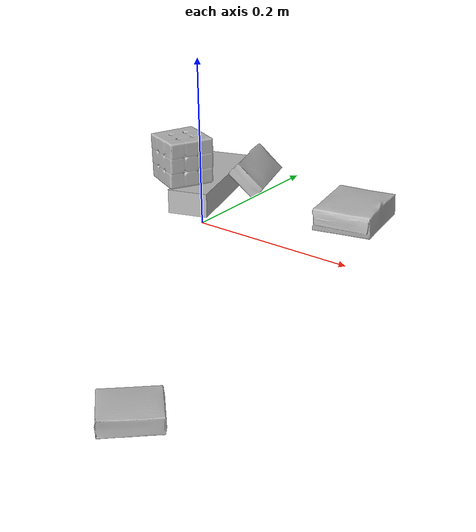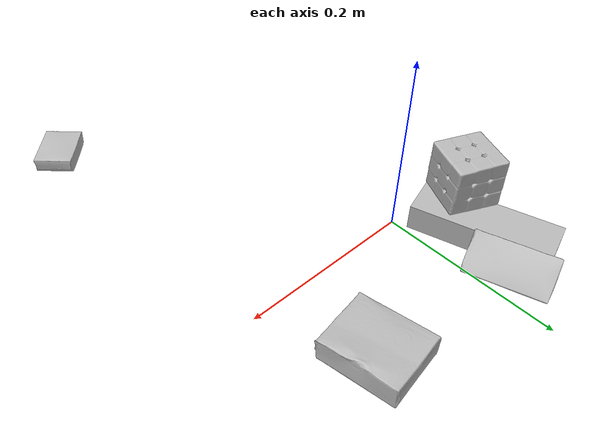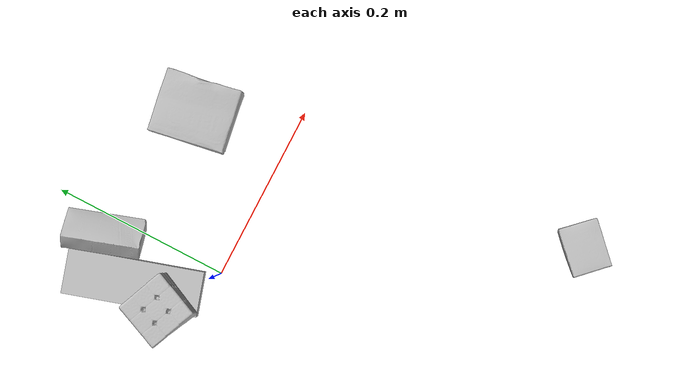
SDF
<sdf version="1.4">
  <world name="default">
    <light name="light1" type="point">
      <pose>0 0 1 0 0 0</pose>
      <diffuse>3 3 3 1</diffuse>
      <specular>3 3 3 1</specular>
    </light>
    <light name="light2" type="point">
      <pose>0 0.5 2 0 0 0</pose>
      <diffuse>1 1 1 1</diffuse>
      <specular>1 1 1 1</specular>
    </light>
    <light name="light3" type="point">
      <pose>0 0.5 2 0 0 0</pose>
      <diffuse>3 3 3 1</diffuse>
      <specular>3 3 3 1</specular>
    </light>
    <scene>
      <ambient>0.7 0.7 0.7</ambient>
    </scene>
    <model name="box1">
      <link name="link_box1">
        <collision name="default">
          <geometry>
            <mesh>
              <uri>model://jenga/collision_meshes/collision.obj</uri>
              <scale>1.0 1.0 1.0</scale>
            </mesh>
          </geometry>
          <surface>
            <friction>
              <ode>
                <mu>0.5</mu>
                <mu2>0.5</mu2>
              </ode>
            </friction>
          <contact>
        <ode>
            <max_vel>0</max_vel>
            <min_depth>0.0001</min_depth>
            <kp>1e8</kp>
        </ode>
    </contact></surface>
        </collision>
        <visual name="default">
          <geometry>
            <mesh>
              <uri>model://jenga/visual_meshes/visual.dae</uri>
              <scale>1.0 1.0 1.0</scale>
            </mesh>
          </geometry>
        </visual>
        <inertial>
          <mass>0.28879067301750183</mass>
          <pose>-2.502855807051674e-07 -0.00010250010382151231 -4.0923401684267446e-05 0.0 -7.342154049184251e-07 0.0</pose>
          <inertia>
            <ixx>7.991539e-05</ixx>
            <iyy>0.00054150453</iyy>
            <izz>0.00057810213</izz>
            <ixy>0</ixy>
            <ixz>0</ixz>
            <iyz>0</iyz>
          </inertia>
        </inertial>
      </link>
      <pose>-0.05205507203936577 0.08000481128692627 0.014999774284660816 2.8497971315690525e-06 1.9474109495757464e-07 1.873420631531833</pose>
    </model>
    <model name="box2">
      <link name="link_box2">
        <collision name="default">
          <geometry>
            <mesh>
              <uri>model://sugar_box/collision_meshes/collision.obj</uri>
              <scale>0.5 0.5 0.5</scale>
            </mesh>
          </geometry>
          <surface>
            <friction>
              <ode>
                <mu>0.5</mu>
                <mu2>0.5</mu2>
              </ode>
            </friction>
          <contact>
        <ode>
            <max_vel>0</max_vel>
            <min_depth>0.0001</min_depth>
            <kp>1e8</kp>
        </ode>
    </contact></surface>
        </collision>
        <visual name="default">
          <geometry>
            <mesh>
              <uri>model://sugar_box/visual_meshes/visual.dae</uri>
              <scale>0.5 0.5 0.5</scale>
            </mesh>
          </geometry>
        </visual>
        <inertial>
          <mass>0.10389333218336105</mass>
          <pose>0.000517186417710036 1.9245549992774613e-05 -0.00018182402709499002 -0.00040462615469338603 0.0010506637547558321 0.0026153785561208315</pose>
          <inertia>
            <ixx>2.1640906e-05</ixx>
            <iyy>6.994788e-05</iyy>
            <izz>8.373595e-05</izz>
            <ixy>0</ixy>
            <ixz>0</ixz>
            <iyz>0</iyz>
          </inertia>
        </inertial>
      </link>
      <pose>-0.019388798624277115 0.13335630297660828 0.022862188518047333 0.7699969060110063 0.003533612572482128 1.8915000016975334</pose>
    </model>
    <model name="box3">
      <link name="link_box3">
        <collision name="default">
          <geometry>
            <mesh>
              <uri>model://rubiks_cube/collision_meshes/collision.obj</uri>
              <scale>1.0 1.0 1.0</scale>
            </mesh>
          </geometry>
          <surface>
            <friction>
              <ode>
                <mu>0.5</mu>
                <mu2>0.5</mu2>
              </ode>
            </friction>
          <contact>
        <ode>
            <max_vel>0</max_vel>
            <min_depth>0.0001</min_depth>
            <kp>1e8</kp>
        </ode>
    </contact></surface>
        </collision>
        <visual name="default">
          <geometry>
            <mesh>
              <uri>model://rubiks_cube/visual_meshes/visual.dae</uri>
              <scale>1.0 1.0 1.0</scale>
            </mesh>
          </geometry>
        </visual>
        <inertial>
          <mass>0.21973572671413422</mass>
          <pose>2.6721041649580002e-05 5.256966323941015e-05 -7.264316082000732e-06 -0.054673783840129137 -0.09814154164948871 -0.03445565380518822</pose>
          <inertia>
            <ixx>0.00012141874</ixx>
            <iyy>0.000120852514</iyy>
            <izz>0.00012242487</izz>
            <ixy>0</ixy>
            <ixz>0</ixz>
            <iyz>0</iyz>
          </inertia>
        </inertial>
      </link>
      <pose>-0.06230473890900612 0.03941114991903305 0.058678172528743744 -0.00014880851458599524 0.00015079581640463122 2.736568742173552</pose>
    </model>
    <model name="box4">
      <link name="link_box4">
        <collision name="default">
          <geometry>
            <mesh>
              <uri>model://pudding_box/collision_meshes/collision.obj</uri>
              <scale>0.5 0.5 0.5</scale>
            </mesh>
          </geometry>
          <surface>
            <friction>
              <ode>
                <mu>0.5</mu>
                <mu2>0.5</mu2>
              </ode>
            </friction>
          <contact>
        <ode>
            <max_vel>0</max_vel>
            <min_depth>0.0001</min_depth>
            <kp>1e8</kp>
        </ode>
    </contact></surface>
        </collision>
        <visual name="default">
          <geometry>
            <mesh>
              <uri>model://pudding_box/visual_meshes/visual.dae</uri>
              <scale>0.5 0.5 0.5</scale>
            </mesh>
          </geometry>
        </visual>
        <inertial>
          <mass>0.0391676165163517</mass>
          <pose>0.00024474109522998333 0.00040339428232982755 -0.0002594413817860186 0.005213101313254789 -0.0066037982630024914 0.020079830751203582</pose>
          <inertia>
            <ixx>1.1069244e-05</ixx>
            <iyy>7.447467e-06</iyy>
            <izz>1.634663e-05</izz>
            <ixy>0</ixy>
            <ixz>0</ixz>
            <iyz>0</iyz>
          </inertia>
        </inertial>
      </link>
      <pose>0.21070490777492523 -0.34171581268310547 0.00986290629953146 0.022348434894575577 -0.011391862435444343 2.3481723046881826</pose>
    </model>
    <model name="box5">
      <link name="link_box5">
        <collision name="default">
          <geometry>
            <mesh>
              <uri>model://gelatin_box/collision_meshes/collision.obj</uri>
              <scale>1.0 1.0 1.0</scale>
            </mesh>
          </geometry>
          <surface>
            <friction>
              <ode>
                <mu>0.5</mu>
                <mu2>0.5</mu2>
              </ode>
            </friction>
          <contact>
        <ode>
            <max_vel>0</max_vel>
            <min_depth>0.0001</min_depth>
            <kp>1e8</kp>
        </ode>
    </contact></surface>
        </collision>
        <visual name="default">
          <geometry>
            <mesh>
              <uri>model://gelatin_box/visual_meshes/visual.dae</uri>
              <scale>1.0 1.0 1.0</scale>
            </mesh>
          </geometry>
        </visual>
        <inertial>
          <mass>0.24157556891441345</mass>
          <pose>0.0004319618456065655 0.00011156872642459348 -0.0003640321083366871 -0.0010503718658393805 -0.0047558177571565665 0.016440565059328244</pose>
          <inertia>
            <ixx>0.00017053263</ixx>
            <iyy>0.00012181056</iyy>
            <izz>0.00025958868</izz>
            <ixy>0</ixy>
            <ixz>0</ixz>
            <iyz>0</iyz>
          </inertia>
        </inertial>
      </link>
      <pose>0.14576438069343567 0.1064247116446495 0.015168311074376106 0.0055974716539416184 -0.007304567215559573 0.1584045585363615</pose>
    </model>
  <physics type="ode">
      <max_contacts>50</max_contacts>
      <ode>
        <solver>
          <type>quick</type>
          <iters>75</iters>
        </solver>
        <constraints>
          <contact_max_correcting_vel>0</contact_max_correcting_vel>
          <contact_surface_layer>0</contact_surface_layer>
        </constraints>
      </ode>
    </physics></world>
</sdf>
